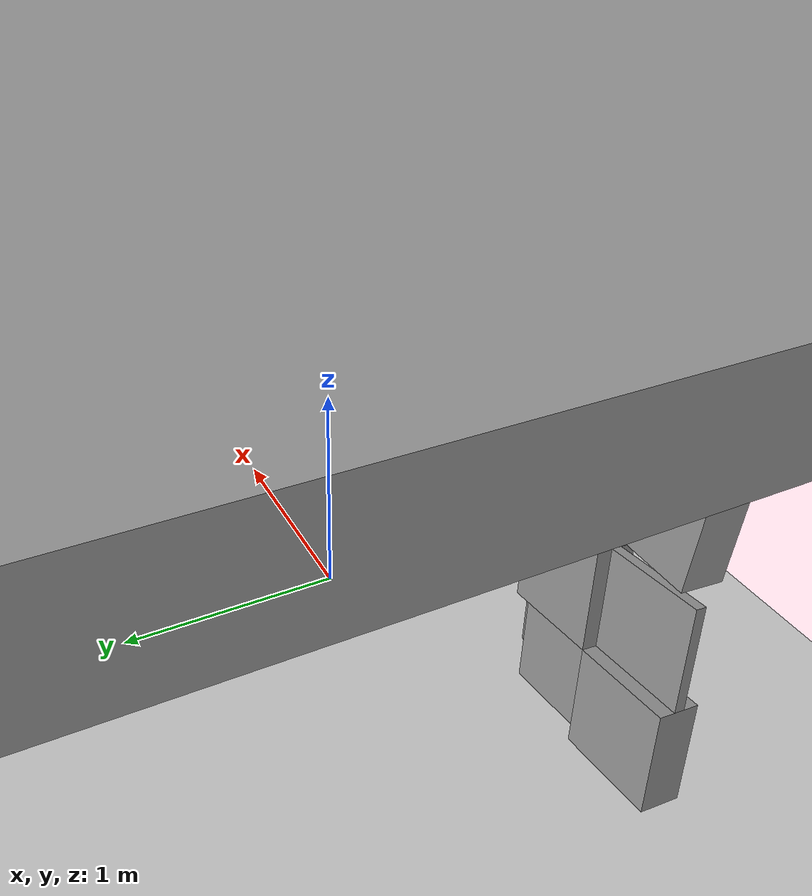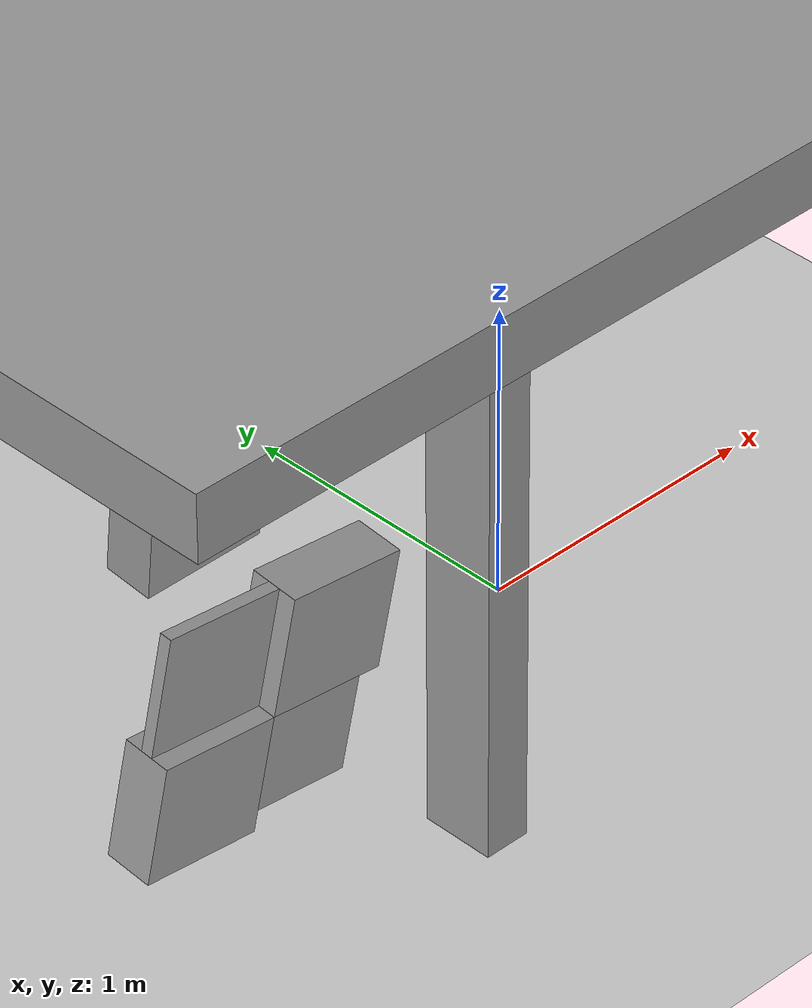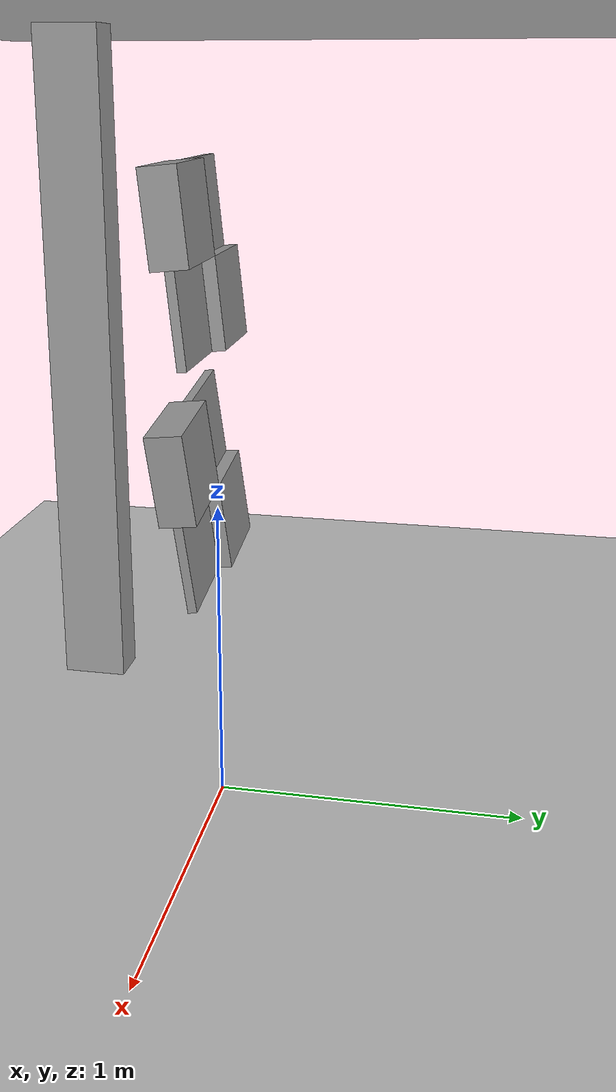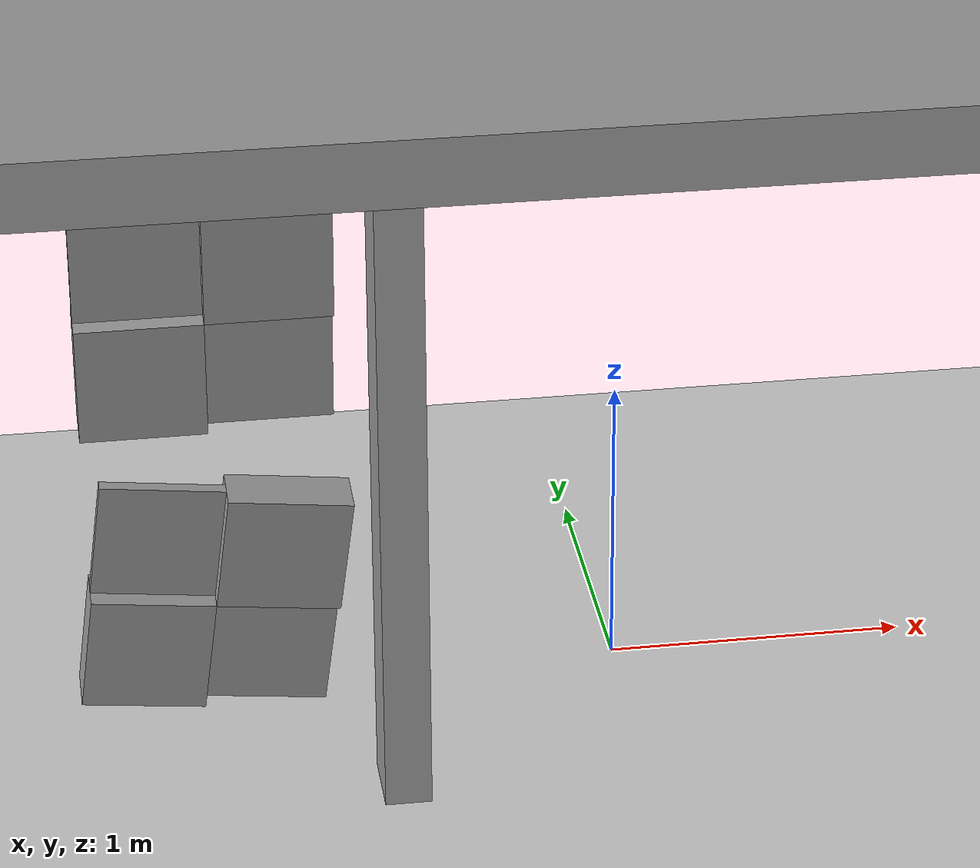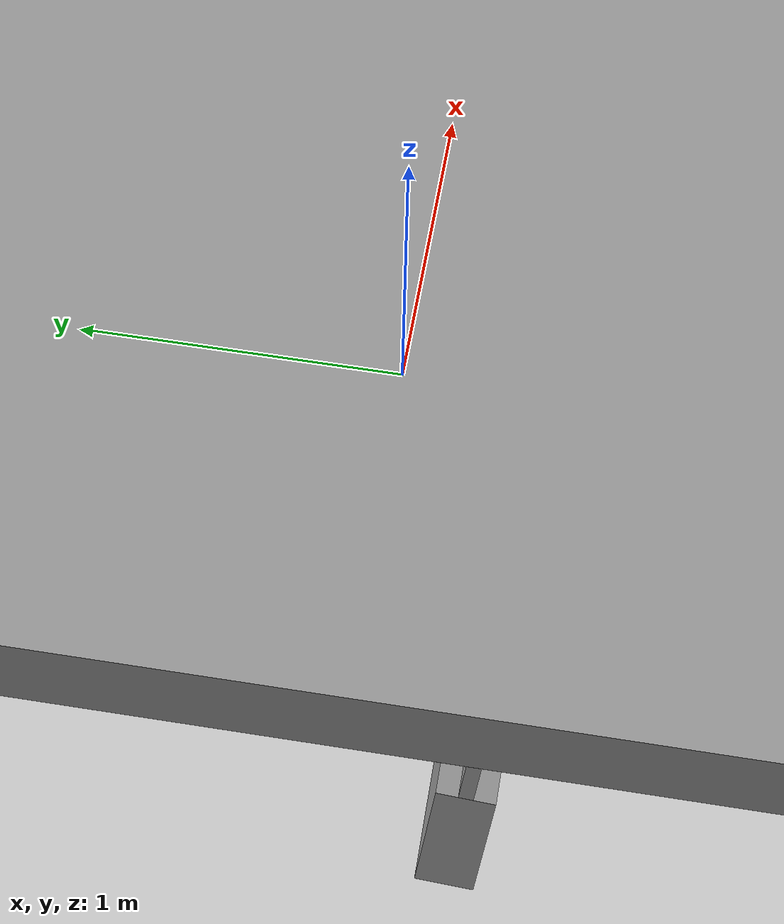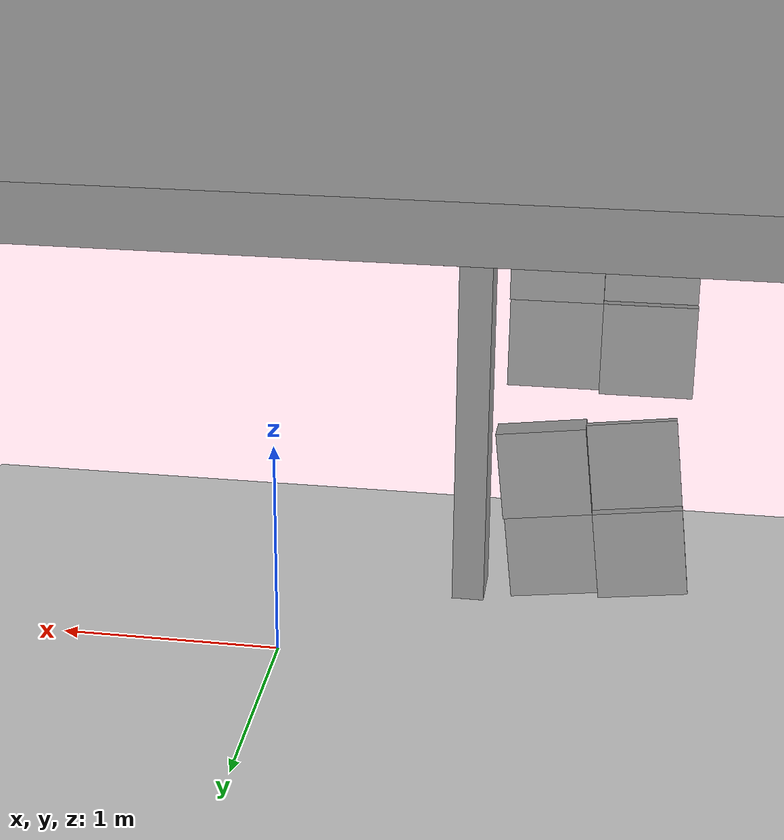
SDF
<sdf version="1.7">
 <world name="default">
  <model name="demo_clean">
   <static>1</static>
   <link name="Wall_21_clone">
    <collision name="Wall_21_Collision">
     <geometry><box><size>0.240964 0.15 2.5</size></box></geometry>
     <pose>0 0 1.25 0 -0 0</pose>
     <surface>
      <friction>
       <ode><mu>1</mu><mu2>1</mu2><fdir1>0 0 0</fdir1><slip1>0</slip1><slip2>0</slip2></ode>
       <torsional>
        <coefficient>1</coefficient>
        <patch_radius>0</patch_radius>
        <surface_radius>0</surface_radius>
        <use_patch_radius>1</use_patch_radius>
        <ode><slip>0</slip></ode>
       </torsional>
      </friction>
      <bounce><restitution_coefficient>0</restitution_coefficient><threshold>1e+06</threshold></bounce>
      <contact>
       <collide_without_contact>0</collide_without_contact>
       <collide_without_contact_bitmask>1</collide_without_contact_bitmask>
       <collide_bitmask>1</collide_bitmask>
       <ode>
        <soft_cfm>0</soft_cfm>
        <soft_erp>0.2</soft_erp>
        <kp>1e+13</kp>
        <kd>1</kd>
        <max_vel>0.01</max_vel>
        <min_depth>0</min_depth>
       </ode>
       <bullet>
        <split_impulse>1</split_impulse>
        <split_impulse_penetration_threshold>-0.01</split_impulse_penetration_threshold>
        <soft_cfm>0</soft_cfm>
        <soft_erp>0.2</soft_erp>
        <kp>1e+13</kp>
        <kd>1</kd>
       </bullet>
      </contact>
     </surface>
    </collision>
    <visual name="Wall_21_Visual">
     <geometry><box><size>0.240964 0.15 2.5</size></box></geometry>
     <material>
      <script><name>Gazebo/Grey</name><uri>file://media/materials/scripts/gazebo.material</uri></script>
      <ambient>1 1 1 1</ambient>
      <shader type="pixel"><normal_map>default</normal_map></shader>
     </material>
     <pose>0 0 1.25 0 -0 0</pose>
    </visual>
    <inertial>
     <inertia><ixx>0</ixx><iyy>0</iyy><izz>0</izz><ixy>0</ixy><ixz>0</ixz><iyz>0</iyz></inertia>
     <mass>1</mass>
    </inertial>
    <pose>-0.802658 -0.717313 0 0 0 -1.5708</pose>
   </link>
  </model>
  <model name="new_ceiling_clone">
   <pose>0.00093 0.002096 2.6 -0 -0 -4e-06</pose>
   <static>0</static>
   <link name="link">
    <collision name="collision">
     <geometry><box><size>20 10 0.2</size></box></geometry>
     <surface>
      <friction>
       <ode><mu>1</mu><mu2>1</mu2><fdir1>0 0 0</fdir1><slip1>0</slip1><slip2>0</slip2></ode>
       <torsional>
        <coefficient>1</coefficient>
        <patch_radius>0</patch_radius>
        <surface_radius>0</surface_radius>
        <use_patch_radius>1</use_patch_radius>
        <ode><slip>0</slip></ode>
       </torsional>
      </friction>
      <bounce><restitution_coefficient>0</restitution_coefficient><threshold>1e+06</threshold></bounce>
      <contact>
       <collide_without_contact>0</collide_without_contact>
       <collide_without_contact_bitmask>1</collide_without_contact_bitmask>
       <collide_bitmask>1</collide_bitmask>
       <ode>
        <soft_cfm>0</soft_cfm>
        <soft_erp>0.2</soft_erp>
        <kp>1e+13</kp>
        <kd>1</kd>
        <max_vel>0.01</max_vel>
        <min_depth>0</min_depth>
       </ode>
       <bullet>
        <split_impulse>1</split_impulse>
        <split_impulse_penetration_threshold>-0.01</split_impulse_penetration_threshold>
        <soft_cfm>0</soft_cfm>
        <soft_erp>0.2</soft_erp>
        <kp>1e+13</kp>
        <kd>1</kd>
       </bullet>
      </contact>
     </surface>
    </collision>
    <visual name="visual">
     <geometry><box><size>20 10 0.2</size></box></geometry>
     <material>
      <script><name>Gazebo/Grey</name><uri>file://media/materials/scripts/gazebo.material</uri></script>
      <shader type="pixel"><normal_map>__default__</normal_map></shader>
      <ambient>0.3 0.3 0.3 1</ambient>
      <diffuse>0.7 0.7 0.7 1</diffuse>
      <specular>0.01 0.01 0.01 1</specular>
      <emissive>0 0 0 1</emissive>
     </material>
    </visual>
    <inertial>
     <inertia>
      <ixx>0.166667</ixx>
      <iyy>0.166667</iyy>
      <izz>0.166667</izz>
      <ixy>0</ixy>
      <ixz>0</ixz>
      <iyz>0</iyz>
     </inertia>
     <mass>1</mass>
    </inertial>
   </link>
  </model>
  <model name="ground_plane">
   <static>1</static>
   <link name="link">
    <collision name="collision">
     <geometry><plane><normal>0 0 1</normal><size>100 100</size></plane></geometry>
     <surface>
      <contact><collide_bitmask>65535</collide_bitmask></contact>
      <friction><ode><mu>100</mu><mu2>50</mu2></ode></friction>
     </surface>
    </collision>
    <visual name="visual">
     <cast_shadows>0</cast_shadows>
     <geometry><plane><normal>0 0 1</normal><size>100 100</size></plane></geometry>
     <material>
      <script><uri>file://media/materials/scripts/gazebo.material</uri><name>Gazebo/Grey</name></script>
     </material>
    </visual>
   </link>
  </model>
  <model name="wall_slate_16">
   <static>1</static>
   <link name="link_0">
    <inertial><mass>1</mass></inertial>
    <gravity>0</gravity>
    <visual name="visual">
     <pose>0 0.2 0.2 0 -0 0</pose>
     <geometry><box><size>0.16 0.4 0.4</size></box></geometry>
     <material>
      <lighting>1</lighting>
      <script><uri>file://media/materials/scripts/gazebo.material</uri><name>Gazebo/Grey</name></script>
      <shader type="pixel"><normal_map>__default__</normal_map></shader>
      <ambient>0.3 0.3 0.3 1</ambient>
      <diffuse>0.7 0.7 0.7 1</diffuse>
      <specular>0.01 0.01 0.01 1</specular>
      <emissive>0 0 0 1</emissive>
     </material>
    </visual>
    <visual name="ModelPreview_0::link_0::visual_1">
     <pose>0 0.2 -0.2 0 -0 0</pose>
     <geometry><box><size>0.04 0.4 0.4</size></box></geometry>
     <material>
      <lighting>1</lighting>
      <script><uri>file://media/materials/scripts/gazebo.material</uri><name>Gazebo/Grey</name></script>
      <shader type="pixel"><normal_map>__default__</normal_map></shader>
      <ambient>0.3 0.3 0.3 1</ambient>
      <diffuse>0.7 0.7 0.7 1</diffuse>
      <specular>0.01 0.01 0.01 1</specular>
      <emissive>0 0 0 1</emissive>
     </material>
    </visual>
    <visual name="ModelPreview_0::link_0::visual_2">
     <pose>0 -0.2 0.2 0 -0 0</pose>
     <geometry><box><size>0.04 0.4 0.4</size></box></geometry>
     <material>
      <lighting>1</lighting>
      <script><uri>file://media/materials/scripts/gazebo.material</uri><name>Gazebo/Grey</name></script>
      <shader type="pixel"><normal_map>__default__</normal_map></shader>
      <ambient>0.3 0.3 0.3 1</ambient>
      <diffuse>0.7 0.7 0.7 1</diffuse>
      <specular>0.01 0.01 0.01 1</specular>
      <emissive>0 0 0 1</emissive>
     </material>
    </visual>
    <visual name="ModelPreview_0::link_0::visual_3">
     <pose>0 -0.2 -0.2 0 -0 0</pose>
     <geometry><box><size>0.16 0.4 0.4</size></box></geometry>
     <material>
      <lighting>1</lighting>
      <script><uri>file://media/materials/scripts/gazebo.material</uri><name>Gazebo/Grey</name></script>
      <shader type="pixel"><normal_map>__default__</normal_map></shader>
      <ambient>0.3 0.3 0.3 1</ambient>
      <diffuse>0.7 0.7 0.7 1</diffuse>
      <specular>0.01 0.01 0.01 1</specular>
      <emissive>0 0 0 1</emissive>
     </material>
    </visual>
    <collision name="collision_2">
     <pose>0 -0.2 0.2 0 -0 0</pose>
     <geometry><box><size>0.04 0.4 0.4</size></box></geometry>
     <surface>
      <friction>
       <ode><mu>1</mu><mu2>1</mu2><fdir1>0 0 0</fdir1><slip1>0</slip1><slip2>0</slip2></ode>
       <torsional>
        <coefficient>1</coefficient>
        <patch_radius>0</patch_radius>
        <surface_radius>0</surface_radius>
        <use_patch_radius>1</use_patch_radius>
        <ode><slip>0</slip></ode>
       </torsional>
      </friction>
      <bounce><restitution_coefficient>0</restitution_coefficient><threshold>1e+06</threshold></bounce>
      <contact>
       <collide_without_contact>0</collide_without_contact>
       <collide_without_contact_bitmask>1</collide_without_contact_bitmask>
       <collide_bitmask>1</collide_bitmask>
       <ode>
        <soft_cfm>0</soft_cfm>
        <soft_erp>0.2</soft_erp>
        <kp>1e+13</kp>
        <kd>1</kd>
        <max_vel>0.01</max_vel>
        <min_depth>0</min_depth>
       </ode>
       <bullet>
        <split_impulse>1</split_impulse>
        <split_impulse_penetration_threshold>-0.01</split_impulse_penetration_threshold>
        <soft_cfm>0</soft_cfm>
        <soft_erp>0.2</soft_erp>
        <kp>1e+13</kp>
        <kd>1</kd>
       </bullet>
      </contact>
     </surface>
    </collision>
    <collision name="collision_1">
     <pose>0 0.2 -0.2 0 -0 0</pose>
     <geometry><box><size>0.04 0.4 0.4</size></box></geometry>
     <surface>
      <friction>
       <ode><mu>1</mu><mu2>1</mu2><fdir1>0 0 0</fdir1><slip1>0</slip1><slip2>0</slip2></ode>
       <torsional>
        <coefficient>1</coefficient>
        <patch_radius>0</patch_radius>
        <surface_radius>0</surface_radius>
        <use_patch_radius>1</use_patch_radius>
        <ode><slip>0</slip></ode>
       </torsional>
      </friction>
      <bounce><restitution_coefficient>0</restitution_coefficient><threshold>1e+06</threshold></bounce>
      <contact>
       <collide_without_contact>0</collide_without_contact>
       <collide_without_contact_bitmask>1</collide_without_contact_bitmask>
       <collide_bitmask>1</collide_bitmask>
       <ode>
        <soft_cfm>0</soft_cfm>
        <soft_erp>0.2</soft_erp>
        <kp>1e+13</kp>
        <kd>1</kd>
        <max_vel>0.01</max_vel>
        <min_depth>0</min_depth>
       </ode>
       <bullet>
        <split_impulse>1</split_impulse>
        <split_impulse_penetration_threshold>-0.01</split_impulse_penetration_threshold>
        <soft_cfm>0</soft_cfm>
        <soft_erp>0.2</soft_erp>
        <kp>1e+13</kp>
        <kd>1</kd>
       </bullet>
      </contact>
     </surface>
    </collision>
    <collision name="collision_4">
     <pose>0 0.2 0.2 0 -0 0</pose>
     <geometry><box><size>0.16 0.4 0.4</size></box></geometry>
     <surface>
      <friction>
       <ode><mu>1</mu><mu2>1</mu2><fdir1>0 0 0</fdir1><slip1>0</slip1><slip2>0</slip2></ode>
       <torsional>
        <coefficient>1</coefficient>
        <patch_radius>0</patch_radius>
        <surface_radius>0</surface_radius>
        <use_patch_radius>1</use_patch_radius>
        <ode><slip>0</slip></ode>
       </torsional>
      </friction>
      <bounce><restitution_coefficient>0</restitution_coefficient><threshold>1e+06</threshold></bounce>
      <contact>
       <collide_without_contact>0</collide_without_contact>
       <collide_without_contact_bitmask>1</collide_without_contact_bitmask>
       <collide_bitmask>1</collide_bitmask>
       <ode>
        <soft_cfm>0</soft_cfm>
        <soft_erp>0.2</soft_erp>
        <kp>1e+13</kp>
        <kd>1</kd>
        <max_vel>0.01</max_vel>
        <min_depth>0</min_depth>
       </ode>
       <bullet>
        <split_impulse>1</split_impulse>
        <split_impulse_penetration_threshold>-0.01</split_impulse_penetration_threshold>
        <soft_cfm>0</soft_cfm>
        <soft_erp>0.2</soft_erp>
        <kp>1e+13</kp>
        <kd>1</kd>
       </bullet>
      </contact>
     </surface>
    </collision>
    <collision name="collision_3">
     <pose>0 -0.2 -0.2 0 -0 0</pose>
     <geometry><box><size>0.16 0.4 0.4</size></box></geometry>
     <surface>
      <friction>
       <ode><mu>1</mu><mu2>1</mu2><fdir1>0 0 0</fdir1><slip1>0</slip1><slip2>0</slip2></ode>
       <torsional>
        <coefficient>1</coefficient>
        <patch_radius>0</patch_radius>
        <surface_radius>0</surface_radius>
        <use_patch_radius>1</use_patch_radius>
        <ode><slip>0</slip></ode>
       </torsional>
      </friction>
      <bounce><restitution_coefficient>0</restitution_coefficient><threshold>1e+06</threshold></bounce>
      <contact>
       <collide_without_contact>0</collide_without_contact>
       <collide_without_contact_bitmask>1</collide_without_contact_bitmask>
       <collide_bitmask>1</collide_bitmask>
       <ode>
        <soft_cfm>0</soft_cfm>
        <soft_erp>0.2</soft_erp>
        <kp>1e+13</kp>
        <kd>1</kd>
        <max_vel>0.01</max_vel>
        <min_depth>0</min_depth>
       </ode>
       <bullet>
        <split_impulse>1</split_impulse>
        <split_impulse_penetration_threshold>-0.01</split_impulse_penetration_threshold>
        <soft_cfm>0</soft_cfm>
        <soft_erp>0.2</soft_erp>
        <kp>1e+13</kp>
        <kd>1</kd>
       </bullet>
      </contact>
     </surface>
    </collision>
   </link>
   <pose>-1.37149 -0.433816 0.6 -0.12 0.1 -1.5659</pose>
  </model>
  <model name="wall_slate_84">
   <static>1</static>
   <link name="link_0">
    <inertial><mass>1</mass></inertial>
    <gravity>0</gravity>
    <visual name="visual">
     <pose>0 0.2 0.2 0 -0 0</pose>
     <geometry><box><size>0.16 0.4 0.4</size></box></geometry>
     <material>
      <lighting>1</lighting>
      <script><uri>file://media/materials/scripts/gazebo.material</uri><name>Gazebo/Grey</name></script>
      <shader type="pixel"><normal_map>__default__</normal_map></shader>
      <ambient>0.3 0.3 0.3 1</ambient>
      <diffuse>0.7 0.7 0.7 1</diffuse>
      <specular>0.01 0.01 0.01 1</specular>
      <emissive>0 0 0 1</emissive>
     </material>
    </visual>
    <visual name="ModelPreview_0::link_0::visual_1">
     <pose>0 0.2 -0.2 0 -0 0</pose>
     <geometry><box><size>0.04 0.4 0.4</size></box></geometry>
     <material>
      <lighting>1</lighting>
      <script><uri>file://media/materials/scripts/gazebo.material</uri><name>Gazebo/Grey</name></script>
      <shader type="pixel"><normal_map>__default__</normal_map></shader>
      <ambient>0.3 0.3 0.3 1</ambient>
      <diffuse>0.7 0.7 0.7 1</diffuse>
      <specular>0.01 0.01 0.01 1</specular>
      <emissive>0 0 0 1</emissive>
     </material>
    </visual>
    <visual name="ModelPreview_0::link_0::visual_2">
     <pose>0 -0.2 0.2 0 -0 0</pose>
     <geometry><box><size>0.04 0.4 0.4</size></box></geometry>
     <material>
      <lighting>1</lighting>
      <script><uri>file://media/materials/scripts/gazebo.material</uri><name>Gazebo/Grey</name></script>
      <shader type="pixel"><normal_map>__default__</normal_map></shader>
      <ambient>0.3 0.3 0.3 1</ambient>
      <diffuse>0.7 0.7 0.7 1</diffuse>
      <specular>0.01 0.01 0.01 1</specular>
      <emissive>0 0 0 1</emissive>
     </material>
    </visual>
    <visual name="ModelPreview_0::link_0::visual_3">
     <pose>0 -0.2 -0.2 0 -0 0</pose>
     <geometry><box><size>0.16 0.4 0.4</size></box></geometry>
     <material>
      <lighting>1</lighting>
      <script><uri>file://media/materials/scripts/gazebo.material</uri><name>Gazebo/Grey</name></script>
      <shader type="pixel"><normal_map>__default__</normal_map></shader>
      <ambient>0.3 0.3 0.3 1</ambient>
      <diffuse>0.7 0.7 0.7 1</diffuse>
      <specular>0.01 0.01 0.01 1</specular>
      <emissive>0 0 0 1</emissive>
     </material>
    </visual>
    <collision name="collision_2">
     <pose>0 -0.2 0.2 0 -0 0</pose>
     <geometry><box><size>0.04 0.4 0.4</size></box></geometry>
     <surface>
      <friction>
       <ode><mu>1</mu><mu2>1</mu2><fdir1>0 0 0</fdir1><slip1>0</slip1><slip2>0</slip2></ode>
       <torsional>
        <coefficient>1</coefficient>
        <patch_radius>0</patch_radius>
        <surface_radius>0</surface_radius>
        <use_patch_radius>1</use_patch_radius>
        <ode><slip>0</slip></ode>
       </torsional>
      </friction>
      <bounce><restitution_coefficient>0</restitution_coefficient><threshold>1e+06</threshold></bounce>
      <contact>
       <collide_without_contact>0</collide_without_contact>
       <collide_without_contact_bitmask>1</collide_without_contact_bitmask>
       <collide_bitmask>1</collide_bitmask>
       <ode>
        <soft_cfm>0</soft_cfm>
        <soft_erp>0.2</soft_erp>
        <kp>1e+13</kp>
        <kd>1</kd>
        <max_vel>0.01</max_vel>
        <min_depth>0</min_depth>
       </ode>
       <bullet>
        <split_impulse>1</split_impulse>
        <split_impulse_penetration_threshold>-0.01</split_impulse_penetration_threshold>
        <soft_cfm>0</soft_cfm>
        <soft_erp>0.2</soft_erp>
        <kp>1e+13</kp>
        <kd>1</kd>
       </bullet>
      </contact>
     </surface>
    </collision>
    <collision name="collision_1">
     <pose>0 0.2 -0.2 0 -0 0</pose>
     <geometry><box><size>0.04 0.4 0.4</size></box></geometry>
     <surface>
      <friction>
       <ode><mu>1</mu><mu2>1</mu2><fdir1>0 0 0</fdir1><slip1>0</slip1><slip2>0</slip2></ode>
       <torsional>
        <coefficient>1</coefficient>
        <patch_radius>0</patch_radius>
        <surface_radius>0</surface_radius>
        <use_patch_radius>1</use_patch_radius>
        <ode><slip>0</slip></ode>
       </torsional>
      </friction>
      <bounce><restitution_coefficient>0</restitution_coefficient><threshold>1e+06</threshold></bounce>
      <contact>
       <collide_without_contact>0</collide_without_contact>
       <collide_without_contact_bitmask>1</collide_without_contact_bitmask>
       <collide_bitmask>1</collide_bitmask>
       <ode>
        <soft_cfm>0</soft_cfm>
        <soft_erp>0.2</soft_erp>
        <kp>1e+13</kp>
        <kd>1</kd>
        <max_vel>0.01</max_vel>
        <min_depth>0</min_depth>
       </ode>
       <bullet>
        <split_impulse>1</split_impulse>
        <split_impulse_penetration_threshold>-0.01</split_impulse_penetration_threshold>
        <soft_cfm>0</soft_cfm>
        <soft_erp>0.2</soft_erp>
        <kp>1e+13</kp>
        <kd>1</kd>
       </bullet>
      </contact>
     </surface>
    </collision>
    <collision name="collision_4">
     <pose>0 0.2 0.2 0 -0 0</pose>
     <geometry><box><size>0.16 0.4 0.4</size></box></geometry>
     <surface>
      <friction>
       <ode><mu>1</mu><mu2>1</mu2><fdir1>0 0 0</fdir1><slip1>0</slip1><slip2>0</slip2></ode>
       <torsional>
        <coefficient>1</coefficient>
        <patch_radius>0</patch_radius>
        <surface_radius>0</surface_radius>
        <use_patch_radius>1</use_patch_radius>
        <ode><slip>0</slip></ode>
       </torsional>
      </friction>
      <bounce><restitution_coefficient>0</restitution_coefficient><threshold>1e+06</threshold></bounce>
      <contact>
       <collide_without_contact>0</collide_without_contact>
       <collide_without_contact_bitmask>1</collide_without_contact_bitmask>
       <collide_bitmask>1</collide_bitmask>
       <ode>
        <soft_cfm>0</soft_cfm>
        <soft_erp>0.2</soft_erp>
        <kp>1e+13</kp>
        <kd>1</kd>
        <max_vel>0.01</max_vel>
        <min_depth>0</min_depth>
       </ode>
       <bullet>
        <split_impulse>1</split_impulse>
        <split_impulse_penetration_threshold>-0.01</split_impulse_penetration_threshold>
        <soft_cfm>0</soft_cfm>
        <soft_erp>0.2</soft_erp>
        <kp>1e+13</kp>
        <kd>1</kd>
       </bullet>
      </contact>
     </surface>
    </collision>
    <collision name="collision_3">
     <pose>0 -0.2 -0.2 0 -0 0</pose>
     <geometry><box><size>0.16 0.4 0.4</size></box></geometry>
     <surface>
      <friction>
       <ode><mu>1</mu><mu2>1</mu2><fdir1>0 0 0</fdir1><slip1>0</slip1><slip2>0</slip2></ode>
       <torsional>
        <coefficient>1</coefficient>
        <patch_radius>0</patch_radius>
        <surface_radius>0</surface_radius>
        <use_patch_radius>1</use_patch_radius>
        <ode><slip>0</slip></ode>
       </torsional>
      </friction>
      <bounce><restitution_coefficient>0</restitution_coefficient><threshold>1e+06</threshold></bounce>
      <contact>
       <collide_without_contact>0</collide_without_contact>
       <collide_without_contact_bitmask>1</collide_without_contact_bitmask>
       <collide_bitmask>1</collide_bitmask>
       <ode>
        <soft_cfm>0</soft_cfm>
        <soft_erp>0.2</soft_erp>
        <kp>1e+13</kp>
        <kd>1</kd>
        <max_vel>0.01</max_vel>
        <min_depth>0</min_depth>
       </ode>
       <bullet>
        <split_impulse>1</split_impulse>
        <split_impulse_penetration_threshold>-0.01</split_impulse_penetration_threshold>
        <soft_cfm>0</soft_cfm>
        <soft_erp>0.2</soft_erp>
        <kp>1e+13</kp>
        <kd>1</kd>
       </bullet>
      </contact>
     </surface>
    </collision>
   </link>
   <pose>-1.37149 -0.433816 1.6 0 0.1 -1.5659</pose>
  </model>
 </world>
</sdf>
